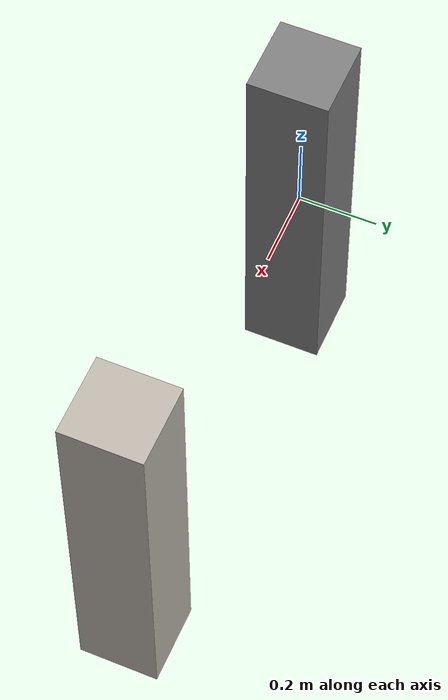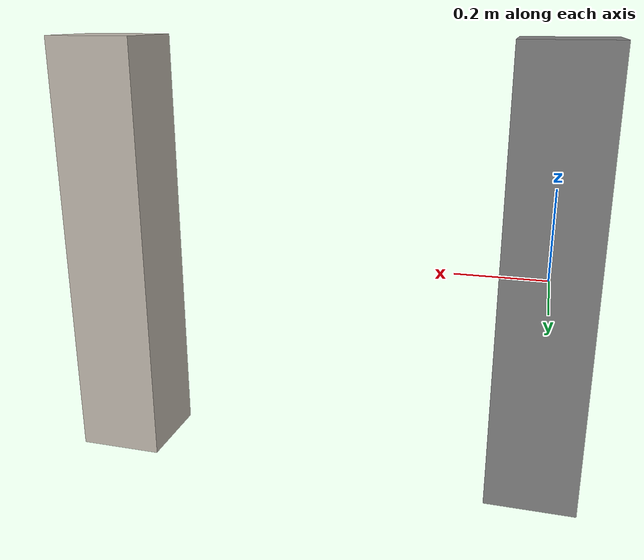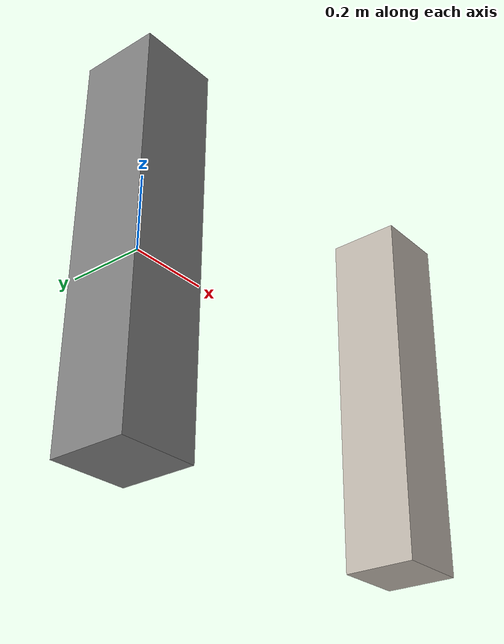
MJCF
<mujoco model="builtin_textures">
    <compiler meshdir="assets" texturedir="assets"/>

    <asset>
        <!-- A builtin texture is procedural, so there is no file to reference and it is skipped -->
        <texture name="gradient_texture" type="skybox" builtin="gradient" rgb1="1 1 1" rgb2="0 0 0" width="32" height="32"/>
        <material name="Gradient" texture="gradient_texture" specular="0"/>
        <!-- A file backed texture in the same model must still be converted -->
        <texture name="grid_texture" type="2d" file="grid.png"/>
        <material name="Grid" texture="grid_texture" specular="0"/>
        <mesh name="box" file="box.obj" scale="0.2 0.2 1"/>
    </asset>

    <worldbody>
        <geom name="GradientBox" type="mesh" mesh="box" material="Gradient" pos="0 0 0"/>
        <geom name="TexturedBox" type="mesh" mesh="box" material="Grid" pos="1 0 0"/>
    </worldbody>
</mujoco>
